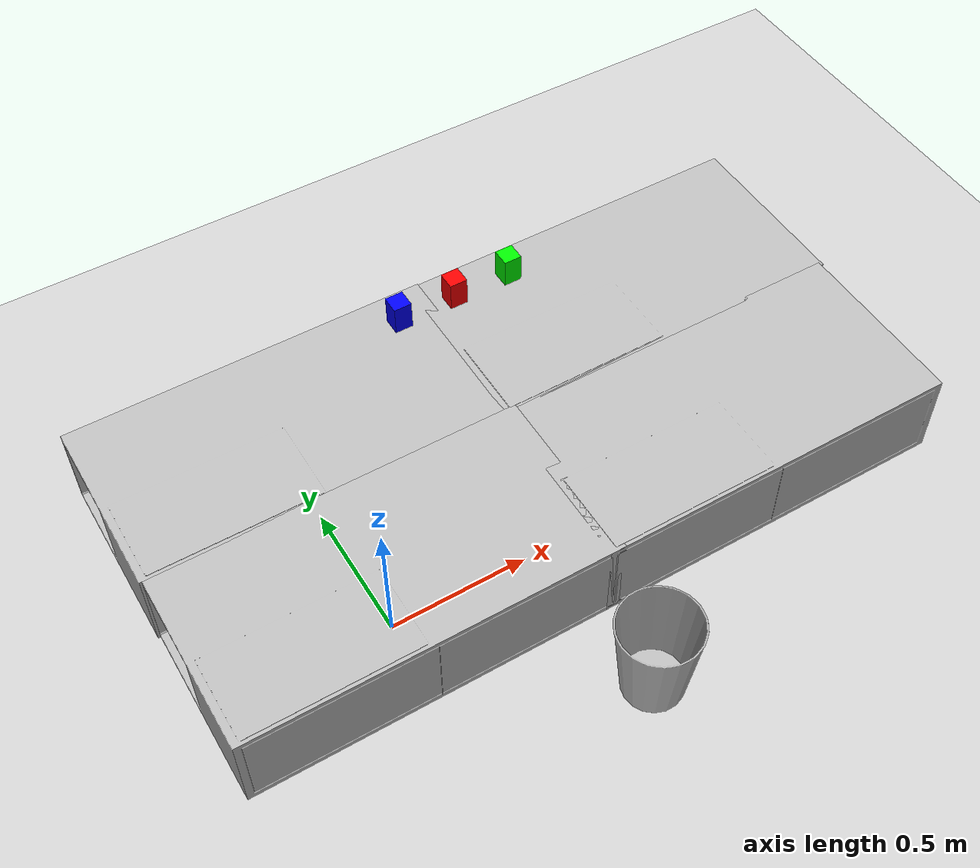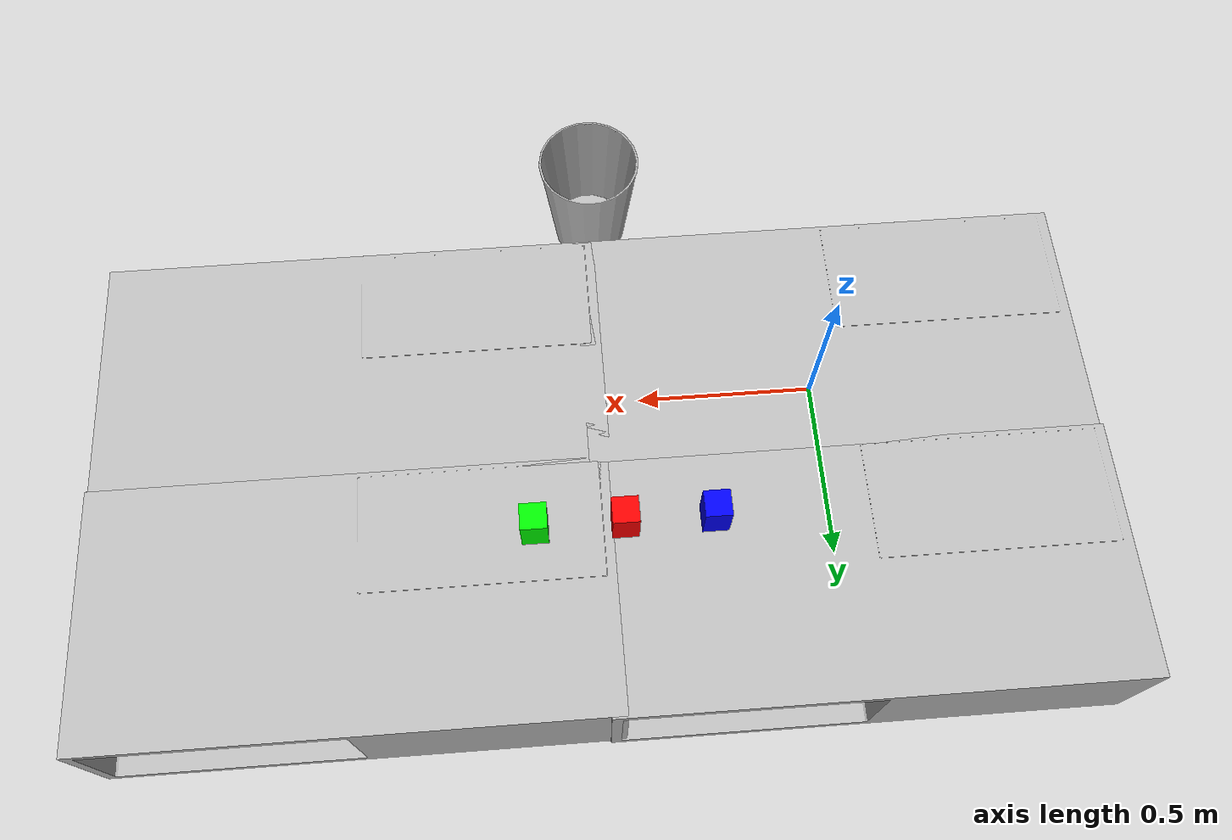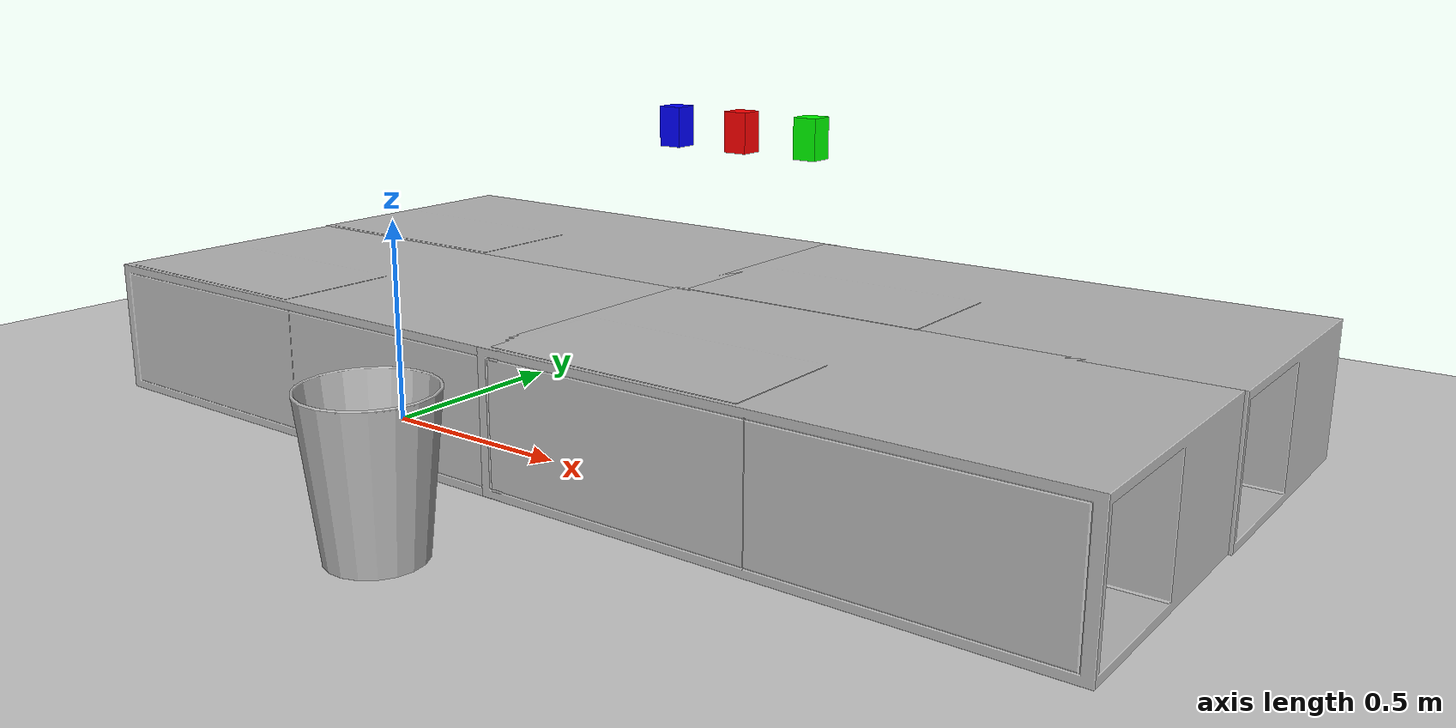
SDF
<sdf version='1.9'>
  <world name='scene_world'>
    <gravity>0 0 -9.8</gravity>
    <magnetic_field>6e-06 2.3e-05 -4.2e-05</magnetic_field>
    <atmosphere type='adiabatic'/>
    <physics type="ode">
      <max_step_size>0.001</max_step_size>
      <real_time_factor>1</real_time_factor>
      <real_time_update_rate>1000</real_time_update_rate>
    </physics>
    <scene>
      <ambient>0.4 0.4 0.4 1</ambient>
      <background>0.7 0.7 0.7 1</background>
      <shadows>true</shadows>
    </scene>

  <!-- ================= RED BOX ================= -->
  <model name="red_box">
    <static>false</static>
    <link name="red_link">
      <pose>0.6 0.6 0.70 0 0 0</pose>
      <collision name="red_collision">
        <geometry>
          <box>
            <size>0.06 0.06 0.1</size>
          </box>
        </geometry>
        <surface>
          <friction>
            <ode>
              <mu>2.0</mu>      <!-- 静摩擦系数，值越大越粗糙 -->
              <mu2>1.5</mu2>    <!-- 动摩擦系数 -->
            </ode>
          </friction>
          <bounce>
            <restitution_coefficient>0.0</restitution_coefficient> <!-- 无弹性，避免跳动 -->
          </bounce>
          <contact>
            <collide_without_contact>false</collide_without_contact>
            <collide_bitmask>1</collide_bitmask>
          </contact>
        </surface>
      </collision>
      <visual name="red_visual">
        <geometry>
          <box>
            <size>0.06 0.06 0.1</size>
          </box>
        </geometry>
        <material>
          <ambient>1 0 0 1</ambient>   <!-- Red -->
          <diffuse>1 0 0 1</diffuse>
        </material>
      </visual>
      <inertial>
        <mass>1.0</mass>
        <inertia>
          <ixx>0.00113333</ixx>
          <iyy>0.00113333</iyy>
          <izz>0.0006</izz>
          <ixy>0</ixy>
          <ixz>0</ixz>
          <iyz>0</iyz>
        </inertia>
      </inertial>
    </link>
  </model>

  <!-- ================= GREEN BOX ================= -->
  <model name="green_box">
    <static>false</static>
    <link name="green_link">
      <pose>0.8 0.6 0.70 0 0 0</pose>
      <collision name="green_collision">
        <geometry>
          <box>
            <size>0.06 0.06 0.1</size>
          </box>
        </geometry>
        <surface>
          <friction>
            <ode>
              <mu>2.0</mu>      <!-- 静摩擦系数，值越大越粗糙 -->
              <mu2>1.5</mu2>    <!-- 动摩擦系数 -->
            </ode>
          </friction>
          <bounce>
            <restitution_coefficient>0.0</restitution_coefficient> <!-- 无弹性，避免跳动 -->
          </bounce>
          <contact>
            <collide_without_contact>false</collide_without_contact>
            <collide_bitmask>1</collide_bitmask>
          </contact>
        </surface>
      </collision>
      <visual name="green_visual">
        <geometry>
          <box>
            <size>0.06 0.06 0.1</size>
          </box>
        </geometry>
        <material>
          <ambient>0 1 0 1</ambient>   <!-- Green -->
          <diffuse>0 1 0 1</diffuse>
        </material>
      </visual>
    </link>
  </model>

  <!-- ================= BLUE BOX ================= -->
  <model name="blue_box">
    <static>false</static>
    <link name="blue_link">
      <pose>0.4 0.6 0.70 0 0 0</pose>
      <collision name="blue_collision">
        <geometry>
          <box>
            <size>0.06 0.06 0.1</size>
          </box>
        </geometry>
        <surface>
          <friction>
            <ode>
              <mu>2.0</mu>      <!-- 静摩擦系数，值越大越粗糙 -->
              <mu2>1.5</mu2>    <!-- 动摩擦系数 -->
            </ode>
          </friction>
          <bounce>
            <restitution_coefficient>0.0</restitution_coefficient> <!-- 无弹性，避免跳动 -->
          </bounce>
          <contact>
            <collide_without_contact>false</collide_without_contact>
            <collide_bitmask>1</collide_bitmask>
          </contact>
        </surface>
      </collision>
      <visual name="blue_visual">
        <geometry>
          <box>
            <size>0.06 0.06 0.1</size>
          </box>
        </geometry>
        <material>
          <ambient>0 0 1 1</ambient>   <!-- Blue -->
          <diffuse>0 0 1 1</diffuse>
        </material>
      </visual>
    </link>
  </model>

	<model name='Trash_01_001'>
        <static>true</static>
        <include>
            <uri>model://aws_robomaker_residential_Trash_01</uri>
        </include>
        <pose> 0.6 -0.6 0.0 0 0 0</pose>
        <plugin filename="gz-sim-pose-publisher-system" name="gz::sim::systems::PosePublisher">
          <publish_model_pose>true</publish_model_pose>
          <publish_link_pose>false</publish_link_pose>
          <publish_collision_pose>false</publish_collision_pose>
          <publish_visual_pose>false</publish_visual_pose>
          <publish_nested_model_pose>false</publish_nested_model_pose>
        </plugin>
	</model>

    <model name='CoffeeTable_1'>
      <static>true</static>
      <model name='aws_robomaker_residential_CoffeeTable_01'>
        <link name='link'>
          <inertial>
            <mass>21.699999999999999</mass>
            <inertia>
              <ixx>0.81374999999999975</ixx>
              <ixy>0</ixy>
              <ixz>0</ixz>
              <iyy>2.76675</iyy>
              <iyz>0</iyz>
              <izz>3.254</izz>
            </inertia>
          </inertial>
          <collision name='collision'>
            <geometry>
              <mesh>
                <uri>model://aws_robomaker_residential_CoffeeTable_01/meshes/aws_CoffeeTable_01_collision.DAE</uri>
                <scale>1 1 1</scale>
              </mesh>
            </geometry>
            <surface>
              <contact>
                <ode>
                  <max_vel>0.01</max_vel>
                </ode>
              </contact>
            </surface>
          </collision>
          <visual name='visual'>
            <geometry>
              <mesh>
                <uri>model://aws_robomaker_residential_CoffeeTable_01/meshes/aws_CoffeeTable_01_visual.DAE</uri>
              </mesh>
            </geometry>
            <meta>
              <layer>1</layer>
            </meta>
          </visual>
        </link>
        <static>true</static>
      </model>
      <pose>0 0 0.041983 0 -0 0</pose>
      <self_collide>false</self_collide>
    </model>
    <model name='CoffeeTable_2'>
      <static>true</static>
      <model name='aws_robomaker_residential_CoffeeTable_01'>
        <link name='link'>
          <inertial>
            <mass>21.699999999999999</mass>
            <inertia>
              <ixx>0.81374999999999975</ixx>
              <ixy>0</ixy>
              <ixz>0</ixz>
              <iyy>2.76675</iyy>
              <iyz>0</iyz>
              <izz>3.254</izz>
            </inertia>
          </inertial>
          <collision name='collision'>
            <geometry>
              <mesh>
                <uri>model://aws_robomaker_residential_CoffeeTable_01/meshes/aws_CoffeeTable_01_collision.DAE</uri>
                <scale>1 1 1</scale>
              </mesh>
            </geometry>
            <surface>
              <contact>
                <ode>
                  <max_vel>0.01</max_vel>
                </ode>
              </contact>
            </surface>
          </collision>
          <visual name='visual'>
            <geometry>
              <mesh>
                <uri>model://aws_robomaker_residential_CoffeeTable_01/meshes/aws_CoffeeTable_01_visual.DAE</uri>
              </mesh>
            </geometry>
            <meta>
              <layer>1</layer>
            </meta>
          </visual>
        </link>
        <static>true</static>
      </model>
      <pose>1.2577 0 0.041983 0 -0 0</pose>
      <self_collide>false</self_collide>
    </model>
    <model name='CoffeeTable_3'>
      <static>true</static>
      <model name='aws_robomaker_residential_CoffeeTable_01'>
        <link name='link'>
          <inertial>
            <mass>21.699999999999999</mass>
            <inertia>
              <ixx>0.81374999999999975</ixx>
              <ixy>0</ixy>
              <ixz>0</ixz>
              <iyy>2.76675</iyy>
              <iyz>0</iyz>
              <izz>3.254</izz>
            </inertia>
          </inertial>
          <collision name='collision'>
            <geometry>
              <mesh>
                <uri>model://aws_robomaker_residential_CoffeeTable_01/meshes/aws_CoffeeTable_01_collision.DAE</uri>
                <scale>1 1 1</scale>
              </mesh>
            </geometry>
            <surface>
              <contact>
                <ode>
                  <max_vel>0.01</max_vel>
                </ode>
              </contact>
            </surface>
          </collision>
          <visual name='visual'>
            <geometry>
              <mesh>
                <uri>model://aws_robomaker_residential_CoffeeTable_01/meshes/aws_CoffeeTable_01_visual.DAE</uri>
              </mesh>
            </geometry>
            <meta>
              <layer>1</layer>
            </meta>
          </visual>
        </link>
        <static>true</static>
      </model>
      <pose>1.26554 0.637963 0.041983 0 -0 0</pose>
      <self_collide>false</self_collide>
    </model>
    <model name='CoffeeTable_4'>
      <static>true</static>
      <model name='aws_robomaker_residential_CoffeeTable_01'>
        <link name='link'>
          <inertial>
            <mass>21.699999999999999</mass>
            <inertia>
              <ixx>0.81374999999999975</ixx>
              <ixy>0</ixy>
              <ixz>0</ixz>
              <iyy>2.76675</iyy>
              <iyz>0</iyz>
              <izz>3.254</izz>
            </inertia>
          </inertial>
          <collision name='collision'>
            <geometry>
              <mesh>
                <uri>model://aws_robomaker_residential_CoffeeTable_01/meshes/aws_CoffeeTable_01_collision.DAE</uri>
                <scale>1 1 1</scale>
              </mesh>
            </geometry>
            <surface>
              <contact>
                <ode>
                  <max_vel>0.01</max_vel>
                </ode>
              </contact>
            </surface>
          </collision>
          <visual name='visual'>
            <geometry>
              <mesh>
                <uri>model://aws_robomaker_residential_CoffeeTable_01/meshes/aws_CoffeeTable_01_visual.DAE</uri>
              </mesh>
            </geometry>
            <meta>
              <layer>1</layer>
            </meta>
          </visual>
        </link>
        <static>true</static>
      </model>
      <pose>-0.008642 0.643146 0.041983 0 -0 0</pose>
      <self_collide>false</self_collide>
    </model>
    <model name='ground_plane'>
      <static>true</static>
      <link name='link'>
        <collision name='collision'>
          <geometry>
            <plane>
              <normal>0 0 1</normal>
              <size>1 1</size>
            </plane>
          </geometry>
          <surface>
            <friction>
              <ode/>
            </friction>
            <bounce/>
            <contact/>
          </surface>
        </collision>
        <visual name='visual'>
          <geometry>
            <plane>
              <normal>0 0 1</normal>
              <size>100 100</size>
            </plane>
          </geometry>
          <material>
            <ambient>0.8 0.8 0.8 1</ambient>
            <diffuse>0.8 0.8 0.8 1</diffuse>
            <specular>0.8 0.8 0.8 1</specular>
          </material>
        </visual>
        <pose>0 0 0 0 -0 0</pose>
        <inertial>
          <pose>0 0 0 0 -0 0</pose>
          <mass>1</mass>
          <inertia>
            <ixx>1</ixx>
            <ixy>0</ixy>
            <ixz>0</ixz>
            <iyy>1</iyy>
            <iyz>0</iyz>
            <izz>1</izz>
          </inertia>
        </inertial>
        <enable_wind>false</enable_wind>
      </link>
      <pose>0 0 0 0 -0 0</pose>
      <self_collide>false</self_collide>
    </model>
    <light name='sun' type='directional'>
      <pose>0 0 10 0 -0 0</pose>
      <cast_shadows>true</cast_shadows>
      <intensity>1</intensity>
      <direction>-0.5 0.1 -0.9</direction>
      <diffuse>0.8 0.8 0.8 1</diffuse>
      <specular>0.2 0.2 0.2 1</specular>
      <attenuation>
        <range>1000</range>
        <linear>0.01</linear>
        <constant>0.90000000000000002</constant>
        <quadratic>0.001</quadratic>
      </attenuation>
      <spot>
        <inner_angle>0</inner_angle>
        <outer_angle>0</outer_angle>
        <falloff>0</falloff>
      </spot>
    </light>
  </world>
</sdf>

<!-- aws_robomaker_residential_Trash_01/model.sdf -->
<sdf version="1.6">
  <model name="aws_robomaker_residential_Trash_01">
    <link name="link">

      <inertial>
        <mass>0.1</mass>
        <inertia>
            <ixy>0</ixy>
            <ixz>0</ixz>
            <iyz>0</iyz>
            <ixx>0.05288</ixx>
            <iyy>0.05288</iyy>
            <izz>0.09132</izz>
          </inertia>
      </inertial>

      <collision name="collision">
        <geometry>
          <mesh>
            <uri>model://aws_robomaker_residential_Trash_01/meshes/aws_Trash_01_collision.DAE</uri>
            <scale>1 1 1</scale>
          </mesh>
        </geometry>

      </collision>

      <visual name="visual">
        <geometry>
            <mesh>
              <uri>model://aws_robomaker_residential_Trash_01/meshes/aws_Trash_01_visual.DAE</uri>
            </mesh>
        </geometry>
        <meta> <layer> 1 </layer></meta>
      </visual>
    </link>
  </model>
</sdf>
